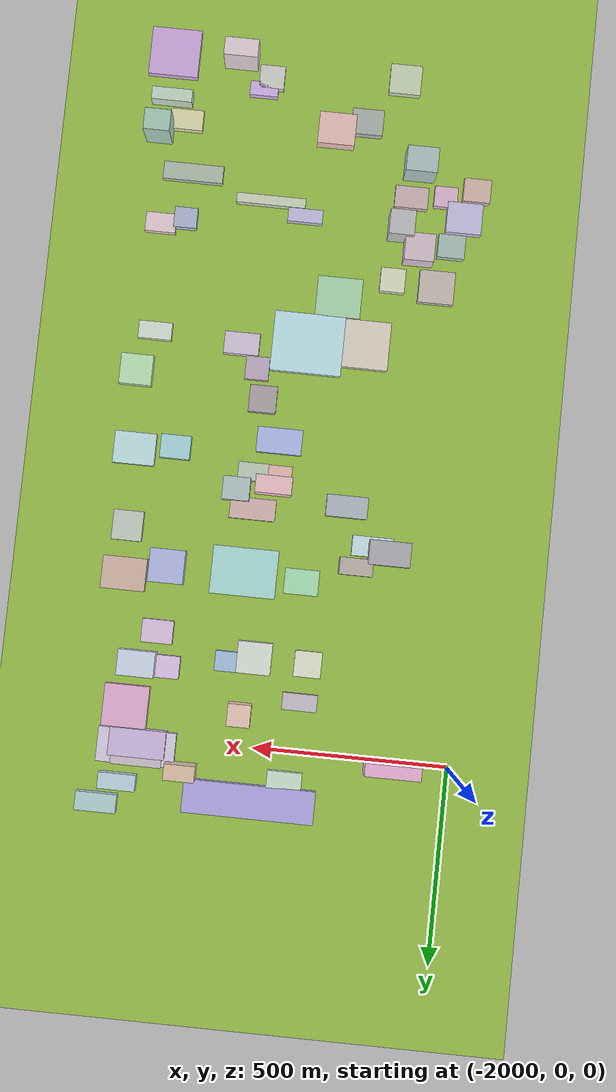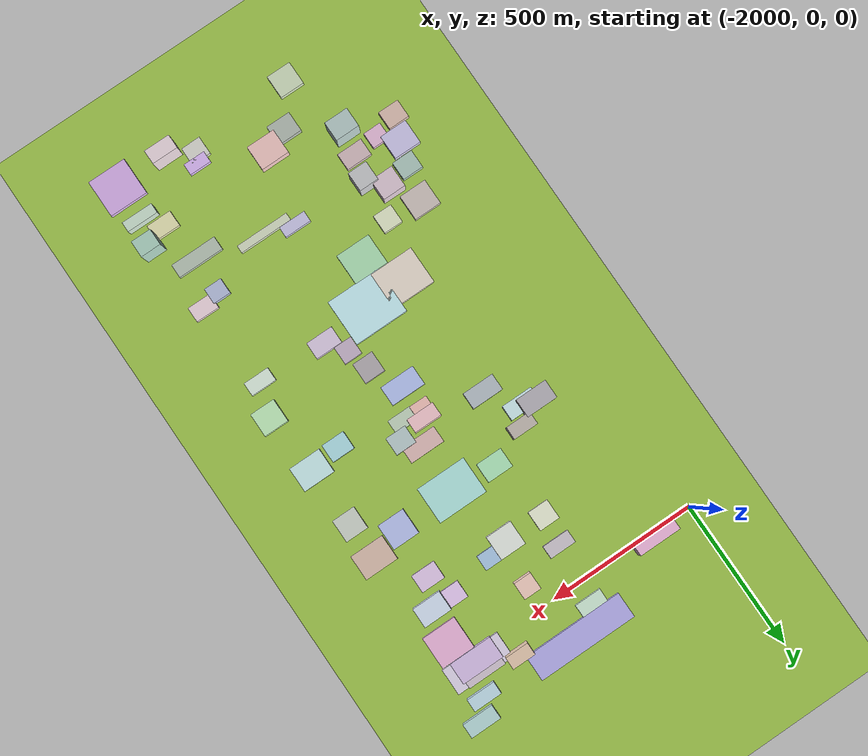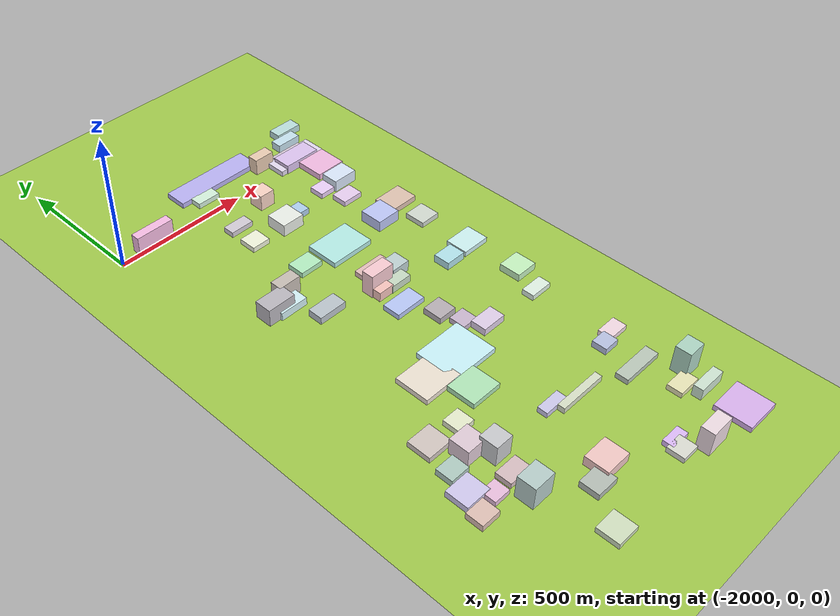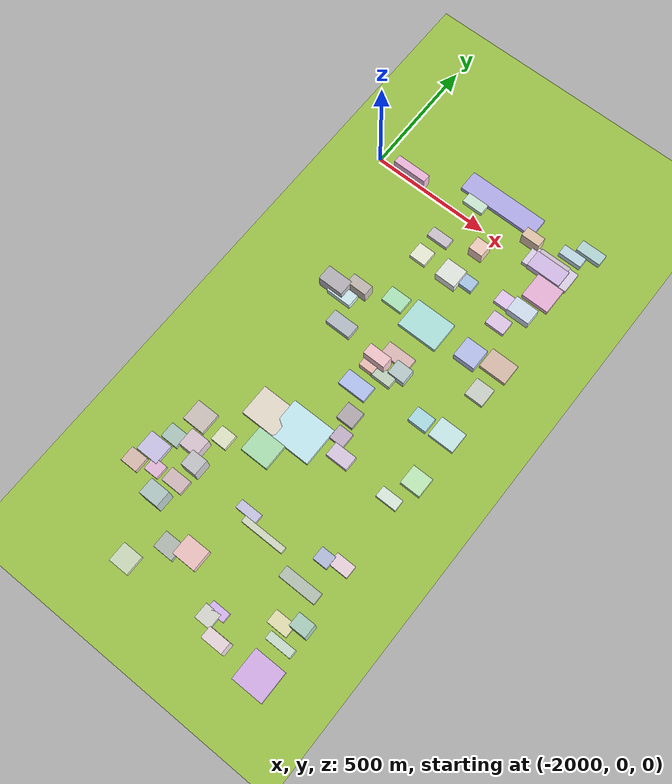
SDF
<sdf version="1.9">
 <world name="city_map">
  <model name="ground_plane">
   <static>1</static>
   <link name="link">
    <collision name="collision">
     <geometry><plane><normal>0 0 1</normal><size>11000 11000</size></plane></geometry>
    </collision>
    <visual name="visual">
     <geometry><plane><normal>0 0 1</normal><size>11000 11000</size></plane></geometry>
     <material>
      <ambient>0.551 0.712 0.210 1</ambient>
      <diffuse>0.651 0.812 0.310 1</diffuse>
      <specular>0.1 0.1 0.05 1</specular>
     </material>
    </visual>
   </link>
  </model>
  <model name="building_704288464">
   <static>1</static>
   <pose>-1536.8891504038045 -1054.3563596227127 10.0 0 0 0</pose>
   <link name="link">
    <collision name="collision">
     <geometry><box><size>185.0161457953972 156.85410000006783 20</size></box></geometry>
    </collision>
    <visual name="visual">
     <cast_shadows>false</cast_shadows>
     <geometry><box><size>185.0161457953972 156.85410000006783 20</size></box></geometry>
     <material>
      <ambient>0.709 0.870 0.898 1</ambient>
      <diffuse>0.809 0.970 0.998 1</diffuse>
      <specular>0.243 0.291 0.300 1</specular>
      <emissive>0.01 0.01 0.01 1</emissive>
     </material>
    </visual>
   </link>
  </model>
  <model name="building_964612802">
   <static>1</static>
   <pose>-1503.8218069606157 133.7510092297601 10.0 0 0 0</pose>
   <link name="link">
    <collision name="collision">
     <geometry><box><size>337.94349394099265 84.9927000002566 20</size></box></geometry>
    </collision>
    <visual name="visual">
     <cast_shadows>false</cast_shadows>
     <geometry><box><size>337.94349394099265 84.9927000002566 20</size></box></geometry>
     <material>
      <ambient>0.644 0.619 0.871 1</ambient>
      <diffuse>0.744 0.719 0.971 1</diffuse>
      <specular>0.223 0.216 0.291 1</specular>
      <emissive>0.01 0.01 0.01 1</emissive>
     </material>
    </visual>
   </link>
  </model>
  <model name="building_795796305">
   <static>1</static>
   <pose>-1433.1266343263812 -446.67509960497097 10.0 0 0 0</pose>
   <link name="link">
    <collision name="collision">
     <geometry><box><size>169.64012694968054 124.5752999998544 20</size></box></geometry>
    </collision>
    <visual name="visual">
     <cast_shadows>false</cast_shadows>
     <geometry><box><size>169.64012694968054 124.5752999998544 20</size></box></geometry>
     <material>
      <ambient>0.626 0.841 0.820 1</ambient>
      <diffuse>0.726 0.941 0.920 1</diffuse>
      <specular>0.218 0.282 0.276 1</specular>
      <emissive>0.01 0.01 0.01 1</emissive>
     </material>
    </visual>
   </link>
  </model>
  <model name="building_12157176">
   <static>1</static>
   <pose>-1675.0121889436398 -1066.0813592065185 10.0 0 0 0</pose>
   <link name="link">
    <collision name="collision">
     <geometry><box><size>148.0839857845683 126.57330000033085 20</size></box></geometry>
    </collision>
    <visual name="visual">
     <cast_shadows>false</cast_shadows>
     <geometry><box><size>148.0839857845683 126.57330000033085 20</size></box></geometry>
     <material>
      <ambient>0.848 0.803 0.746 1</ambient>
      <diffuse>0.948 0.903 0.846 1</diffuse>
      <specular>0.284 0.271 0.254 1</specular>
      <emissive>0.01 0.01 0.01 1</emissive>
     </material>
    </visual>
   </link>
  </model>
  <model name="building_988642200">
   <static>1</static>
   <pose>-1204.4342931998065 25.123955632968954 10.0 0 0 0</pose>
   <link name="link">
    <collision name="collision">
     <geometry><box><size>200.12497261075552 88.189499999757 20</size></box></geometry>
    </collision>
    <visual name="visual">
     <cast_shadows>false</cast_shadows>
     <geometry><box><size>200.12497261075552 88.189499999757 20</size></box></geometry>
     <material>
      <ambient>0.815 0.778 0.862 1</ambient>
      <diffuse>0.915 0.878 0.962 1</diffuse>
      <specular>0.274 0.264 0.289 1</specular>
      <emissive>0.01 0.01 0.01 1</emissive>
     </material>
    </visual>
   </link>
  </model>
  <model name="building_964401013">
   <static>1</static>
   <pose>-1111.0636028866522 -1792.0975195329652 10.0 0 0 0</pose>
   <link name="link">
    <collision name="collision">
     <geometry><box><size>130.25850000001782 126.69446936713892 20</size></box></geometry>
    </collision>
    <visual name="visual">
     <cast_shadows>false</cast_shadows>
     <geometry><box><size>130.25850000001782 126.69446936713892 20</size></box></geometry>
     <material>
      <ambient>0.774 0.619 0.854 1</ambient>
      <diffuse>0.874 0.719 0.954 1</diffuse>
      <specular>0.262 0.216 0.286 1</specular>
      <emissive>0.01 0.01 0.01 1</emissive>
     </material>
    </visual>
   </link>
  </model>
  <model name="building_627020353">
   <static>1</static>
   <pose>-1166.5510955998432 -76.06400152099383 12.0 0 0 0</pose>
   <link name="link">
    <collision name="collision">
     <geometry><box><size>115.206900000004 107.89986030619293 24.0</size></box></geometry>
    </collision>
    <visual name="visual">
     <cast_shadows>false</cast_shadows>
     <geometry><box><size>115.206900000004 107.89986030619293 24.0</size></box></geometry>
     <material>
      <ambient>0.863 0.646 0.800 1</ambient>
      <diffuse>0.963 0.746 0.900 1</diffuse>
      <specular>0.289 0.224 0.270 1</specular>
      <emissive>0.01 0.01 0.01 1</emissive>
     </material>
    </visual>
   </link>
  </model>
  <model name="building_559208449">
   <static>1</static>
   <pose>-1605.6546095802448 -1183.7813413798674 10.0 0 0 0</pose>
   <link name="link">
    <collision name="collision">
     <geometry><box><size>117.85536133811067 104.63970000034095 20</size></box></geometry>
    </collision>
    <visual name="visual">
     <cast_shadows>false</cast_shadows>
     <geometry><box><size>117.85536133811067 104.63970000034095 20</size></box></geometry>
     <material>
      <ambient>0.613 0.823 0.641 1</ambient>
      <diffuse>0.713 0.923 0.741 1</diffuse>
      <specular>0.214 0.277 0.222 1</specular>
      <emissive>0.01 0.01 0.01 1</emissive>
     </material>
    </visual>
   </link>
  </model>
  <model name="building_234184040">
   <static>1</static>
   <pose>-1207.05863094869 13.933959807911528 16.96881054272498 0 0 0</pose>
   <link name="link">
    <collision name="collision">
     <geometry><box><size>144.32256868699145 71.5506000001227 33.93762108544996</size></box></geometry>
    </collision>
    <visual name="visual">
     <cast_shadows>false</cast_shadows>
     <geometry><box><size>144.32256868699145 71.5506000001227 33.93762108544996</size></box></geometry>
     <material>
      <ambient>0.781 0.685 0.856 1</ambient>
      <diffuse>0.881 0.785 0.956 1</diffuse>
      <specular>0.264 0.235 0.287 1</specular>
      <emissive>0.01 0.01 0.01 1</emissive>
     </material>
    </visual>
   </link>
  </model>
  <model name="building_343190957">
   <static>1</static>
   <pose>-1125.4594556506854 -412.05349529354964 10.5 0 0 0</pose>
   <link name="link">
    <collision name="collision">
     <geometry><box><size>114.27450000014971 84.73173248765009 21.0</size></box></geometry>
    </collision>
    <visual name="visual">
     <cast_shadows>false</cast_shadows>
     <geometry><box><size>114.27450000014971 84.73173248765009 21.0</size></box></geometry>
     <material>
      <ambient>0.790 0.677 0.610 1</ambient>
      <diffuse>0.890 0.777 0.710 1</diffuse>
      <specular>0.267 0.233 0.213 1</specular>
      <emissive>0.01 0.01 0.01 1</emissive>
     </material>
    </visual>
   </link>
  </model>
  <model name="building_272565726">
   <static>1</static>
   <pose>-1117.8018921482724 -736.5846280449426 10.0 0 0 0</pose>
   <link name="link">
    <collision name="collision">
     <geometry><box><size>108.17766486004878 83.34989999998754 20</size></box></geometry>
    </collision>
    <visual name="visual">
     <cast_shadows>false</cast_shadows>
     <geometry><box><size>108.17766486004878 83.34989999998754 20</size></box></geometry>
     <material>
      <ambient>0.725 0.865 0.868 1</ambient>
      <diffuse>0.825 0.965 0.968 1</diffuse>
      <specular>0.248 0.289 0.290 1</specular>
      <emissive>0.01 0.01 0.01 1</emissive>
     </material>
    </visual>
   </link>
  </model>
  <model name="building_279113521">
   <static>1</static>
   <pose>-1556.7889625554112 -1624.3620785129626 18.0 0 0 0</pose>
   <link name="link">
    <collision name="collision">
     <geometry><box><size>97.15830000045855 83.9958814377421 36.0</size></box></geometry>
    </collision>
    <visual name="visual">
     <cast_shadows>false</cast_shadows>
     <geometry><box><size>97.15830000045855 83.9958814377421 36.0</size></box></geometry>
     <material>
      <ambient>0.873 0.705 0.692 1</ambient>
      <diffuse>0.973 0.805 0.792 1</diffuse>
      <specular>0.292 0.242 0.238 1</specular>
      <emissive>0.01 0.01 0.01 1</emissive>
     </material>
    </visual>
   </link>
  </model>
  <model name="building_853301683">
   <static>1</static>
   <pose>-1856.3577469010859 -1235.2428188589802 10.5 0 0 0</pose>
   <link name="link">
    <collision name="collision">
     <geometry><box><size>92.49630000039843 86.04975053860672 21.0</size></box></geometry>
    </collision>
    <visual name="visual">
     <cast_shadows>false</cast_shadows>
     <geometry><box><size>92.49630000039843 86.04975053860672 21.0</size></box></geometry>
     <material>
      <ambient>0.744 0.698 0.673 1</ambient>
      <diffuse>0.844 0.798 0.773 1</diffuse>
      <specular>0.253 0.239 0.232 1</specular>
      <emissive>0.01 0.01 0.01 1</emissive>
     </material>
    </visual>
   </link>
  </model>
  <model name="building_830202476">
   <static>1</static>
   <pose>-1234.68201159145 -441.47955820299177 20.74159668848543 0 0 0</pose>
   <link name="link">
    <collision name="collision">
     <geometry><box><size>91.04788777447877 86.94629999942549 41.48319337697086</size></box></geometry>
    </collision>
    <visual name="visual">
     <cast_shadows>false</cast_shadows>
     <geometry><box><size>91.04788777447877 86.94629999942549 41.48319337697086</size></box></geometry>
     <material>
      <ambient>0.658 0.699 0.885 1</ambient>
      <diffuse>0.758 0.799 0.985 1</diffuse>
      <specular>0.227 0.240 0.295 1</specular>
      <emissive>0.01 0.01 0.01 1</emissive>
     </material>
    </visual>
   </link>
  </model>
  <model name="building_685108843">
   <static>1</static>
   <pose>-1489.4493933696572 -793.106874618543 10.0 0 0 0</pose>
   <link name="link">
    <collision name="collision">
     <geometry><box><size>117.63780000001844 66.23536152196681 20</size></box></geometry>
    </collision>
    <visual name="visual">
     <cast_shadows>false</cast_shadows>
     <geometry><box><size>117.63780000001844 66.23536152196681 20</size></box></geometry>
     <material>
      <ambient>0.641 0.702 0.891 1</ambient>
      <diffuse>0.741 0.802 0.991 1</diffuse>
      <specular>0.222 0.241 0.297 1</specular>
      <emissive>0.01 0.01 0.01 1</emissive>
     </material>
    </visual>
   </link>
  </model>
  <model name="building_313618752">
   <static>1</static>
   <pose>-1911.7030443022613 -1424.243639308813 12.0 0 0 0</pose>
   <link name="link">
    <collision name="collision">
     <geometry><box><size>92.57399999972904 81.99939121173756 24.0</size></box></geometry>
    </collision>
    <visual name="visual">
     <cast_shadows>false</cast_shadows>
     <geometry><box><size>92.57399999972904 81.99939121173756 24.0</size></box></geometry>
     <material>
      <ambient>0.738 0.710 0.859 1</ambient>
      <diffuse>0.838 0.810 0.959 1</diffuse>
      <specular>0.252 0.243 0.288 1</specular>
      <emissive>0.01 0.01 0.01 1</emissive>
     </material>
    </visual>
   </link>
  </model>
  <model name="building_777116061">
   <static>1</static>
   <pose>-1207.6984999869042 44.180776943441586 11.13446915468485 0 0 0</pose>
   <link name="link">
    <collision name="collision">
     <geometry><box><size>131.05002615615118 56.35469999999998 22.2689383093697</size></box></geometry>
    </collision>
    <visual name="visual">
     <cast_shadows>false</cast_shadows>
     <geometry><box><size>131.05002615615118 56.35469999999998 22.2689383093697</size></box></geometry>
     <material>
      <ambient>0.759 0.705 0.760 1</ambient>
      <diffuse>0.859 0.805 0.860 1</diffuse>
      <specular>0.258 0.241 0.258 1</specular>
      <emissive>0.01 0.01 0.01 1</emissive>
     </material>
    </visual>
   </link>
  </model>
  <model name="building_497699792">
   <static>1</static>
   <pose>-1192.598385174603 -1475.1705830790788 10.0 0 0 0</pose>
   <link name="link">
    <collision name="collision">
     <geometry><box><size>156.6563542241564 45.69869999929921 20</size></box></geometry>
    </collision>
    <visual name="visual">
     <cast_shadows>false</cast_shadows>
     <geometry><box><size>156.6563542241564 45.69869999929921 20</size></box></geometry>
     <material>
      <ambient>0.648 0.700 0.644 1</ambient>
      <diffuse>0.748 0.800 0.744 1</diffuse>
      <specular>0.224 0.240 0.223 1</specular>
      <emissive>0.01 0.01 0.01 1</emissive>
     </material>
    </visual>
   </link>
  </model>
  <model name="building_4354269">
   <static>1</static>
   <pose>-1482.1839981995258 -231.36584990679438 22.8798165831724 0 0 0</pose>
   <link name="link">
    <collision name="collision">
     <geometry><box><size>87.88271948888539 81.30750000056963 45.7596331663448</size></box></geometry>
    </collision>
    <visual name="visual">
     <cast_shadows>false</cast_shadows>
     <geometry><box><size>87.88271948888539 81.30750000056963 45.7596331663448</size></box></geometry>
     <material>
      <ambient>0.840 0.858 0.830 1</ambient>
      <diffuse>0.940 0.958 0.930 1</diffuse>
      <specular>0.282 0.287 0.279 1</specular>
      <emissive>0.01 0.01 0.01 1</emissive>
     </material>
    </visual>
   </link>
  </model>
  <model name="building_94855245">
   <static>1</static>
   <pose>-1798.8968727163501 -530.3257605463024 33.0 0 0 0</pose>
   <link name="link">
    <collision name="collision">
     <geometry><box><size>106.80420000039703 63.1920843428778 66.0</size></box></geometry>
    </collision>
    <visual name="visual">
     <cast_shadows>false</cast_shadows>
     <geometry><box><size>106.80420000039703 63.1920843428778 66.0</size></box></geometry>
     <material>
      <ambient>0.648 0.634 0.663 1</ambient>
      <diffuse>0.748 0.734 0.763 1</diffuse>
      <specular>0.224 0.220 0.229 1</specular>
      <emissive>0.01 0.01 0.01 1</emissive>
     </material>
    </visual>
   </link>
  </model>
  <model name="building_949914203">
   <static>1</static>
   <pose>-1100.6129336431725 -940.9302337679286 13.5 0 0 0</pose>
   <link name="link">
    <collision name="collision">
     <geometry><box><size>84.12690000039191 79.61990972246878 27.0</size></box></geometry>
    </collision>
    <visual name="visual">
     <cast_shadows>false</cast_shadows>
     <geometry><box><size>84.12690000039191 79.61990972246878 27.0</size></box></geometry>
     <material>
      <ambient>0.691 0.871 0.670 1</ambient>
      <diffuse>0.791 0.971 0.770 1</diffuse>
      <specular>0.237 0.291 0.231 1</specular>
      <emissive>0.01 0.01 0.01 1</emissive>
     </material>
    </visual>
   </link>
  </model>
  <model name="building_774512603">
   <static>1</static>
   <pose>-1438.383940142968 -610.5736587677343 10.0 0 0 0</pose>
   <link name="link">
    <collision name="collision">
     <geometry><box><size>118.63168018111392 55.58880000051403 20</size></box></geometry>
    </collision>
    <visual name="visual">
     <cast_shadows>false</cast_shadows>
     <geometry><box><size>118.63168018111392 55.58880000051403 20</size></box></geometry>
     <material>
      <ambient>0.813 0.670 0.657 1</ambient>
      <diffuse>0.913 0.770 0.757 1</diffuse>
      <specular>0.274 0.231 0.227 1</specular>
      <emissive>0.01 0.01 0.01 1</emissive>
     </material>
    </visual>
   </link>
  </model>
  <model name="building_518492051">
   <static>1</static>
   <pose>-1723.7566891415763 -1779.7170096351892 10.0 0 0 0</pose>
   <link name="link">
    <collision name="collision">
     <geometry><box><size>82.96488398942626 78.80999999977689 20</size></box></geometry>
    </collision>
    <visual name="visual">
     <cast_shadows>false</cast_shadows>
     <geometry><box><size>82.96488398942626 78.80999999977689 20</size></box></geometry>
     <material>
      <ambient>0.743 0.802 0.675 1</ambient>
      <diffuse>0.843 0.902 0.775 1</diffuse>
      <specular>0.253 0.271 0.232 1</specular>
      <emissive>0.01 0.01 0.01 1</emissive>
     </material>
    </visual>
   </link>
  </model>
  <model name="building_400930262">
   <static>1</static>
   <pose>-1183.2592411211701 -187.27597805387614 22.305746965476317 0 0 0</pose>
   <link name="link">
    <collision name="collision">
     <geometry><box><size>95.90626055835052 66.3225000005454 44.61149393095263</size></box></geometry>
    </collision>
    <visual name="visual">
     <cast_shadows>false</cast_shadows>
     <geometry><box><size>95.90626055835052 66.3225000005454 44.61149393095263</size></box></geometry>
     <material>
      <ambient>0.770 0.824 0.898 1</ambient>
      <diffuse>0.870 0.924 0.998 1</diffuse>
      <specular>0.261 0.277 0.299 1</specular>
      <emissive>0.01 0.01 0.01 1</emissive>
     </material>
    </visual>
   </link>
  </model>
  <model name="building_994794193">
   <static>1</static>
   <pose>-1680.382235540659 -640.5742044106729 13.5 0 0 0</pose>
   <link name="link">
    <collision name="collision">
     <geometry><box><size>107.3591999997845 56.553401334968434 27.0</size></box></geometry>
    </collision>
    <visual name="visual">
     <cast_shadows>false</cast_shadows>
     <geometry><box><size>107.3591999997845 56.553401334968434 27.0</size></box></geometry>
     <material>
      <ambient>0.649 0.686 0.717 1</ambient>
      <diffuse>0.749 0.786 0.817 1</diffuse>
      <specular>0.225 0.236 0.245 1</specular>
      <emissive>0.01 0.01 0.01 1</emissive>
     </material>
    </visual>
   </link>
  </model>
  <model name="building_990171337">
   <static>1</static>
   <pose>-1121.6393221571648 -535.7487393759667 10.0 0 0 0</pose>
   <link name="link">
    <collision name="collision">
     <geometry><box><size>78.01260430672669 77.18939999976726 20</size></box></geometry>
    </collision>
    <visual name="visual">
     <cast_shadows>false</cast_shadows>
     <geometry><box><size>78.01260430672669 77.18939999976726 20</size></box></geometry>
     <material>
      <ambient>0.742 0.770 0.733 1</ambient>
      <diffuse>0.842 0.870 0.833 1</diffuse>
      <specular>0.253 0.261 0.250 1</specular>
      <emissive>0.01 0.01 0.01 1</emissive>
     </material>
    </visual>
   </link>
  </model>
  <model name="building_776333312">
   <static>1</static>
   <pose>-1582.913117285372 -435.7306634495162 10.07005034778464 0 0 0</pose>
   <link name="link">
    <collision name="collision">
     <geometry><box><size>88.94032328055603 66.04500000045732 20.14010069556928</size></box></geometry>
    </collision>
    <visual name="visual">
     <cast_shadows>false</cast_shadows>
     <geometry><box><size>88.94032328055603 66.04500000045732 20.14010069556928</size></box></geometry>
     <material>
      <ambient>0.620 0.853 0.672 1</ambient>
      <diffuse>0.720 0.953 0.772 1</diffuse>
      <specular>0.216 0.286 0.232 1</specular>
      <emissive>0.01 0.01 0.01 1</emissive>
     </material>
    </visual>
   </link>
  </model>
  <model name="building_651350229">
   <static>1</static>
   <pose>-1634.8203595414154 -1654.4461479355793 12.0 0 0 0</pose>
   <link name="link">
    <collision name="collision">
     <geometry><box><size>82.7393999999515 68.24013003339671 24.0</size></box></geometry>
    </collision>
    <visual name="visual">
     <cast_shadows>false</cast_shadows>
     <geometry><box><size>82.7393999999515 68.24013003339671 24.0</size></box></geometry>
     <material>
      <ambient>0.629 0.662 0.629 1</ambient>
      <diffuse>0.729 0.762 0.729 1</diffuse>
      <specular>0.219 0.229 0.219 1</specular>
      <emissive>0.01 0.01 0.01 1</emissive>
     </material>
    </visual>
   </link>
  </model>
  <model name="building_846394028">
   <static>1</static>
   <pose>-1800.105596374429 -1326.2136967798397 30.88834127137469 0 0 0</pose>
   <link name="link">
    <collision name="collision">
     <geometry><box><size>77.56591311688163 72.43860000024682 61.77668254274938</size></box></geometry>
    </collision>
    <visual name="visual">
     <cast_shadows>false</cast_shadows>
     <geometry><box><size>77.56591311688163 72.43860000024682 61.77668254274938</size></box></geometry>
     <material>
      <ambient>0.795 0.714 0.762 1</ambient>
      <diffuse>0.895 0.814 0.862 1</diffuse>
      <specular>0.268 0.244 0.259 1</specular>
      <emissive>0.01 0.01 0.01 1</emissive>
     </material>
    </visual>
   </link>
  </model>
  <model name="building_375875070">
   <static>1</static>
   <pose>-1755.1410675997772 -543.6287418802234 15.0 0 0 0</pose>
   <link name="link">
    <collision name="collision">
     <geometry><box><size>105.3279000004963 52.37067958740281 30.0</size></box></geometry>
    </collision>
    <visual name="visual">
     <cast_shadows>false</cast_shadows>
     <geometry><box><size>105.3279000004963 52.37067958740281 30.0</size></box></geometry>
     <material>
      <ambient>0.746 0.862 0.879 1</ambient>
      <diffuse>0.846 0.962 0.979 1</diffuse>
      <specular>0.254 0.289 0.294 1</specular>
      <emissive>0.01 0.01 0.01 1</emissive>
     </material>
    </visual>
   </link>
  </model>
  <model name="building_123816473">
   <static>1</static>
   <pose>-1783.600993913087 -1548.8306823556509 42.83142493886356 0 0 0</pose>
   <link name="link">
    <collision name="collision">
     <geometry><box><size>81.33929690199912 65.48999999949245 85.66284987772713</size></box></geometry>
    </collision>
    <visual name="visual">
     <cast_shadows>false</cast_shadows>
     <geometry><box><size>81.33929690199912 65.48999999949245 85.66284987772713</size></box></geometry>
     <material>
      <ambient>0.636 0.723 0.712 1</ambient>
      <diffuse>0.736 0.823 0.812 1</diffuse>
      <specular>0.221 0.247 0.244 1</specular>
      <emissive>0.01 0.01 0.01 1</emissive>
     </material>
    </visual>
   </link>
  </model>
  <model name="building_796682023">
   <static>1</static>
   <pose>-1366.1714217560148 -1035.8808171293088 13.5 0 0 0</pose>
   <link name="link">
    <collision name="collision">
     <geometry><box><size>91.66687231128564 57.398099999574015 27.0</size></box></geometry>
    </collision>
    <visual name="visual">
     <cast_shadows>false</cast_shadows>
     <geometry><box><size>91.66687231128564 57.398099999574015 27.0</size></box></geometry>
     <material>
      <ambient>0.797 0.731 0.834 1</ambient>
      <diffuse>0.897 0.831 0.934 1</diffuse>
      <specular>0.269 0.249 0.280 1</specular>
      <emissive>0.01 0.01 0.01 1</emissive>
     </material>
    </visual>
   </link>
  </model>
  <model name="building_444221978">
   <static>1</static>
   <pose>-1117.350358582794 172.37340837263494 13.5 0 0 0</pose>
   <link name="link">
    <collision name="collision">
     <geometry><box><size>105.30570000023687 47.73026168687169 27.0</size></box></geometry>
    </collision>
    <visual name="visual">
     <cast_shadows>false</cast_shadows>
     <geometry><box><size>105.30570000023687 47.73026168687169 27.0</size></box></geometry>
     <material>
      <ambient>0.648 0.791 0.788 1</ambient>
      <diffuse>0.748 0.891 0.888 1</diffuse>
      <specular>0.224 0.267 0.266 1</specular>
      <emissive>0.01 0.01 0.01 1</emissive>
     </material>
    </visual>
   </link>
  </model>
  <model name="building_838509498">
   <static>1</static>
   <pose>-1768.947372429863 -1466.2859848891364 10.5 0 0 0</pose>
   <link name="link">
    <collision name="collision">
     <geometry><box><size>87.06840000006366 57.4547855818921 21.0</size></box></geometry>
    </collision>
    <visual name="visual">
     <cast_shadows>false</cast_shadows>
     <geometry><box><size>87.06840000006366 57.4547855818921 21.0</size></box></geometry>
     <material>
      <ambient>0.764 0.662 0.678 1</ambient>
      <diffuse>0.864 0.762 0.778 1</diffuse>
      <specular>0.259 0.228 0.234 1</specular>
      <emissive>0.01 0.01 0.01 1</emissive>
     </material>
    </visual>
   </link>
  </model>
  <model name="building_723825931">
   <static>1</static>
   <pose>-1435.5418225922817 -897.1811712910962 12.0 0 0 0</pose>
   <link name="link">
    <collision name="collision">
     <geometry><box><size>71.05109999980641 70.23596079517908 24.0</size></box></geometry>
    </collision>
    <visual name="visual">
     <cast_shadows>false</cast_shadows>
     <geometry><box><size>71.05109999980641 70.23596079517908 24.0</size></box></geometry>
     <material>
      <ambient>0.635 0.604 0.626 1</ambient>
      <diffuse>0.735 0.704 0.726 1</diffuse>
      <specular>0.220 0.211 0.218 1</specular>
      <emissive>0.01 0.01 0.01 1</emissive>
     </material>
    </visual>
   </link>
  </model>
  <model name="building_253488695">
   <static>1</static>
   <pose>-1227.0984437325526 -272.7572874089798 10.0 0 0 0</pose>
   <link name="link">
    <collision name="collision">
     <geometry><box><size>81.20759999940219 60.46683992570462 20</size></box></geometry>
    </collision>
    <visual name="visual">
     <cast_shadows>false</cast_shadows>
     <geometry><box><size>81.20759999940219 60.46683992570462 20</size></box></geometry>
     <material>
      <ambient>0.828 0.729 0.862 1</ambient>
      <diffuse>0.928 0.829 0.962 1</diffuse>
      <specular>0.278 0.249 0.289 1</specular>
      <emissive>0.01 0.01 0.01 1</emissive>
     </material>
    </visual>
   </link>
  </model>
  <model name="building_468642795">
   <static>1</static>
   <pose>-1859.5285611430052 15.43385581848635 35.25 0 0 0</pose>
   <link name="link">
    <collision name="collision">
     <geometry><box><size>143.80943665661212 33.49980000028552 70.5</size></box></geometry>
    </collision>
    <visual name="visual">
     <cast_shadows>false</cast_shadows>
     <geometry><box><size>143.80943665661212 33.49980000028552 70.5</size></box></geometry>
     <material>
      <ambient>0.884 0.657 0.810 1</ambient>
      <diffuse>0.984 0.757 0.910 1</diffuse>
      <specular>0.295 0.227 0.273 1</specular>
      <emissive>0.01 0.01 0.01 1</emissive>
     </material>
    </visual>
   </link>
  </model>
  <model name="building_515790309">
   <static>1</static>
   <pose>-1223.510981680164 -750.1105506194178 14.281661979987486 0 0 0</pose>
   <link name="link">
    <collision name="collision">
     <geometry><box><size>77.82210000006273 61.2022264188467 28.563323959974973</size></box></geometry>
    </collision>
    <visual name="visual">
     <cast_shadows>false</cast_shadows>
     <geometry><box><size>77.82210000006273 61.2022264188467 28.563323959974973</size></box></geometry>
     <material>
      <ambient>0.618 0.812 0.843 1</ambient>
      <diffuse>0.718 0.912 0.943 1</diffuse>
      <specular>0.215 0.274 0.283 1</specular>
      <emissive>0.01 0.01 0.01 1</emissive>
     </material>
    </visual>
   </link>
  </model>
  <model name="building_890598553">
   <static>1</static>
   <pose>-1620.1183219594573 -227.8838092898958 10.0 0 0 0</pose>
   <link name="link">
    <collision name="collision">
     <geometry><box><size>70.11869999995213 66.73452166601989 20</size></box></geometry>
    </collision>
    <visual name="visual">
     <cast_shadows>false</cast_shadows>
     <geometry><box><size>70.11869999995213 66.73452166601989 20</size></box></geometry>
     <material>
      <ambient>0.860 0.877 0.782 1</ambient>
      <diffuse>0.960 0.977 0.882 1</diffuse>
      <specular>0.288 0.293 0.265 1</specular>
      <emissive>0.01 0.01 0.01 1</emissive>
     </material>
    </visual>
   </link>
  </model>
  <model name="building_240686384">
   <static>1</static>
   <pose>-1403.5158941804536 -1420.8954745337646 10.98990083124776 0 0 0</pose>
   <link name="link">
    <collision name="collision">
     <geometry><box><size>181.29435269685038 25.319100000118056 21.97980166249552</size></box></geometry>
    </collision>
    <visual name="visual">
     <cast_shadows>false</cast_shadows>
     <geometry><box><size>181.29435269685038 25.319100000118056 21.97980166249552</size></box></geometry>
     <material>
      <ambient>0.767 0.800 0.701 1</ambient>
      <diffuse>0.867 0.900 0.801 1</diffuse>
      <specular>0.260 0.270 0.240 1</specular>
      <emissive>0.01 0.01 0.01 1</emissive>
     </material>
    </visual>
   </link>
  </model>
  <model name="building_615262209">
   <static>1</static>
   <pose>-1161.1629429420093 -1614.4386860960742 10.0 0 0 0</pose>
   <link name="link">
    <collision name="collision">
     <geometry><box><size>84.74849999976897 53.801299001576844 20</size></box></geometry>
    </collision>
    <visual name="visual">
     <cast_shadows>false</cast_shadows>
     <geometry><box><size>84.74849999976897 53.801299001576844 20</size></box></geometry>
     <material>
      <ambient>0.832 0.821 0.635 1</ambient>
      <diffuse>0.932 0.921 0.735 1</diffuse>
      <specular>0.280 0.276 0.221 1</specular>
      <emissive>0.01 0.01 0.01 1</emissive>
     </material>
    </visual>
   </link>
  </model>
  <model name="building_476755346">
   <static>1</static>
   <pose>-1938.3020555315952 -1500.4950822684627 12.0 0 0 0</pose>
   <link name="link">
    <collision name="collision">
     <geometry><box><size>70.9541351010873 61.62720000009614 24.0</size></box></geometry>
    </collision>
    <visual name="visual">
     <cast_shadows>false</cast_shadows>
     <geometry><box><size>70.9541351010873 61.62720000009614 24.0</size></box></geometry>
     <material>
      <ambient>0.794 0.672 0.629 1</ambient>
      <diffuse>0.894 0.772 0.729 1</diffuse>
      <specular>0.268 0.231 0.219 1</specular>
      <emissive>0.01 0.01 0.01 1</emissive>
     </material>
    </visual>
   </link>
  </model>
  <model name="building_400296653">
   <static>1</static>
   <pose>-1884.9618130757278 -1345.9801166052382 12.0 0 0 0</pose>
   <link name="link">
    <collision name="collision">
     <geometry><box><size>70.85745110344939 61.61609999996642 24.0</size></box></geometry>
    </collision>
    <visual name="visual">
     <cast_shadows>false</cast_shadows>
     <geometry><box><size>70.85745110344939 61.61609999996642 24.0</size></box></geometry>
     <material>
      <ambient>0.610 0.717 0.679 1</ambient>
      <diffuse>0.710 0.817 0.779 1</diffuse>
      <specular>0.213 0.245 0.234 1</specular>
      <emissive>0.01 0.01 0.01 1</emissive>
     </material>
    </visual>
   </link>
  </model>
  <model name="building_643724401">
   <static>1</static>
   <pose>-1487.3294217019325 -673.8730254432924 43.68901571837337 0 0 0</pose>
   <link name="link">
    <collision name="collision">
     <geometry><box><size>93.53117624659593 45.920699999527415 87.37803143674674</size></box></geometry>
    </collision>
    <visual name="visual">
     <cast_shadows>false</cast_shadows>
     <geometry><box><size>93.53117624659593 45.920699999527415 87.37803143674674</size></box></geometry>
     <material>
      <ambient>0.896 0.717 0.743 1</ambient>
      <diffuse>0.996 0.817 0.843 1</diffuse>
      <specular>0.299 0.245 0.253 1</specular>
      <emissive>0.01 0.01 0.01 1</emissive>
     </material>
    </visual>
   </link>
  </model>
  <model name="building_501730052">
   <static>1</static>
   <pose>-1748.4422165375981 -1382.5576877261624 38.289988876036695 0 0 0</pose>
   <link name="link">
    <collision name="collision">
     <geometry><box><size>65.62319999947164 65.43265426862457 76.57997775207339</size></box></geometry>
    </collision>
    <visual name="visual">
     <cast_shadows>false</cast_shadows>
     <geometry><box><size>65.62319999947164 65.43265426862457 76.57997775207339</size></box></geometry>
     <material>
      <ambient>0.705 0.709 0.724 1</ambient>
      <diffuse>0.805 0.809 0.824 1</diffuse>
      <specular>0.241 0.243 0.247 1</specular>
      <emissive>0.01 0.01 0.01 1</emissive>
     </material>
    </visual>
   </link>
  </model>
  <model name="building_298093000">
   <static>1</static>
   <pose>-1391.3872628721394 -657.9851369141928 21.281163896651115 0 0 0</pose>
   <link name="link">
    <collision name="collision">
     <geometry><box><size>70.43532305042427 60.361799999505195 42.56232779330223</size></box></geometry>
    </collision>
    <visual name="visual">
     <cast_shadows>false</cast_shadows>
     <geometry><box><size>70.43532305042427 60.361799999505195 42.56232779330223</size></box></geometry>
     <material>
      <ambient>0.666 0.737 0.744 1</ambient>
      <diffuse>0.766 0.837 0.844 1</diffuse>
      <specular>0.230 0.251 0.253 1</specular>
      <emissive>0.01 0.01 0.01 1</emissive>
     </material>
    </visual>
   </link>
  </model>
  <model name="building_956927591">
   <static>1</static>
   <pose>-1289.0208879762777 -1793.354342961853 45.040827235510854 0 0 0</pose>
   <link name="link">
    <collision name="collision">
     <geometry><box><size>88.3702956753931 46.908600000030276 90.08165447102171</size></box></geometry>
    </collision>
    <visual name="visual">
     <cast_shadows>false</cast_shadows>
     <geometry><box><size>88.3702956753931 46.908600000030276 90.08165447102171</size></box></geometry>
     <material>
      <ambient>0.854 0.782 0.812 1</ambient>
      <diffuse>0.954 0.882 0.912 1</diffuse>
      <specular>0.286 0.265 0.274 1</specular>
      <emissive>0.01 0.01 0.01 1</emissive>
     </material>
    </visual>
   </link>
  </model>
  <model name="building_455499246">
   <static>1</static>
   <pose>-1740.794788897667 -1242.45801054879 10.5 0 0 0</pose>
   <link name="link">
    <collision name="collision">
     <geometry><box><size>64.91066272742748 63.1257000002563 21.0</size></box></geometry>
    </collision>
    <visual name="visual">
     <cast_shadows>false</cast_shadows>
     <geometry><box><size>64.91066272742748 63.1257000002563 21.0</size></box></geometry>
     <material>
      <ambient>0.824 0.846 0.724 1</ambient>
      <diffuse>0.924 0.946 0.824 1</diffuse>
      <specular>0.277 0.284 0.247 1</specular>
      <emissive>0.01 0.01 0.01 1</emissive>
     </material>
    </visual>
   </link>
  </model>
  <model name="building_751929096">
   <static>1</static>
   <pose>-1165.1980425651498 115.6905375283764 15.0 0 0 0</pose>
   <link name="link">
    <collision name="collision">
     <geometry><box><size>96.60330000028239 41.73306288762984 30.0</size></box></geometry>
    </collision>
    <visual name="visual">
     <cast_shadows>false</cast_shadows>
     <geometry><box><size>96.60330000028239 41.73306288762984 30.0</size></box></geometry>
     <material>
      <ambient>0.692 0.804 0.857 1</ambient>
      <diffuse>0.792 0.904 0.957 1</diffuse>
      <specular>0.238 0.271 0.287 1</specular>
      <emissive>0.01 0.01 0.01 1</emissive>
     </material>
    </visual>
   </link>
  </model>
  <model name="building_395126735">
   <static>1</static>
   <pose>-1372.571852453235 -1750.9380606529294 10.0 0 0 0</pose>
   <link name="link">
    <collision name="collision">
     <geometry><box><size>65.65650000064949 61.05958856689476 20</size></box></geometry>
    </collision>
    <visual name="visual">
     <cast_shadows>false</cast_shadows>
     <geometry><box><size>65.65650000064949 61.05958856689476 20</size></box></geometry>
     <material>
      <ambient>0.783 0.785 0.751 1</ambient>
      <diffuse>0.883 0.885 0.851 1</diffuse>
      <specular>0.265 0.265 0.255 1</specular>
      <emissive>0.01 0.01 0.01 1</emissive>
     </material>
    </visual>
   </link>
  </model>
  <model name="building_626234155">
   <static>1</static>
   <pose>-1121.7539219328914 -1334.1695474714186 10.0 0 0 0</pose>
   <link name="link">
    <collision name="collision">
     <geometry><box><size>79.66470000030057 50.176950223738324 20</size></box></geometry>
    </collision>
    <visual name="visual">
     <cast_shadows>false</cast_shadows>
     <geometry><box><size>79.66470000030057 50.176950223738324 20</size></box></geometry>
     <material>
      <ambient>0.870 0.773 0.809 1</ambient>
      <diffuse>0.970 0.873 0.909 1</diffuse>
      <specular>0.291 0.262 0.273 1</specular>
      <emissive>0.01 0.01 0.01 1</emissive>
     </material>
    </visual>
   </link>
  </model>
  <model name="building_636558068">
   <static>1</static>
   <pose>-1589.0604652054355 71.00037794317498 10.0 0 0 0</pose>
   <link name="link">
    <collision name="collision">
     <geometry><box><size>89.35499999996921 44.232581763587916 20</size></box></geometry>
    </collision>
    <visual name="visual">
     <cast_shadows>false</cast_shadows>
     <geometry><box><size>89.35499999996921 44.232581763587916 20</size></box></geometry>
     <material>
      <ambient>0.752 0.864 0.782 1</ambient>
      <diffuse>0.852 0.964 0.882 1</diffuse>
      <specular>0.256 0.289 0.265 1</specular>
      <emissive>0.01 0.01 0.01 1</emissive>
     </material>
    </visual>
   </link>
  </model>
  <model name="building_938667849">
   <static>1</static>
   <pose>-1138.131355374865 -1048.5757663322427 10.5 0 0 0</pose>
   <link name="link">
    <collision name="collision">
     <geometry><box><size>86.88423284967139 45.44339999947056 21.0</size></box></geometry>
    </collision>
    <visual name="visual">
     <cast_shadows>false</cast_shadows>
     <geometry><box><size>86.88423284967139 45.44339999947056 21.0</size></box></geometry>
     <material>
      <ambient>0.800 0.867 0.813 1</ambient>
      <diffuse>0.900 0.967 0.913 1</diffuse>
      <specular>0.270 0.290 0.274 1</specular>
      <emissive>0.01 0.01 0.01 1</emissive>
     </material>
    </visual>
   </link>
  </model>
  <model name="building_269782983">
   <static>1</static>
   <pose>-1608.9470287412184 -129.56293859121823 10.0 0 0 0</pose>
   <link name="link">
    <collision name="collision">
     <geometry><box><size>90.0153463056465 43.60080000002142 20</size></box></geometry>
    </collision>
    <visual name="visual">
     <cast_shadows>false</cast_shadows>
     <geometry><box><size>90.0153463056465 43.60080000002142 20</size></box></geometry>
     <material>
      <ambient>0.746 0.715 0.756 1</ambient>
      <diffuse>0.846 0.815 0.856 1</diffuse>
      <specular>0.254 0.244 0.257 1</specular>
      <emissive>0.01 0.01 0.01 1</emissive>
     </material>
    </visual>
   </link>
  </model>
  <model name="building_281017345">
   <static>1</static>
   <pose>-1431.9982094760821 -705.629526312326 14.33247106547328 0 0 0</pose>
   <link name="link">
    <collision name="collision">
     <geometry><box><size>82.23989999963521 47.225275260668816 28.66494213094656</size></box></geometry>
    </collision>
    <visual name="visual">
     <cast_shadows>false</cast_shadows>
     <geometry><box><size>82.23989999963521 47.225275260668816 28.66494213094656</size></box></geometry>
     <material>
      <ambient>0.701 0.775 0.687 1</ambient>
      <diffuse>0.801 0.875 0.787 1</diffuse>
      <specular>0.240 0.262 0.236 1</specular>
      <emissive>0.01 0.01 0.01 1</emissive>
     </material>
    </visual>
   </link>
  </model>
  <model name="building_105132794">
   <static>1</static>
   <pose>-1093.7531229229928 -1578.1534555154933 49.589839065869626 0 0 0</pose>
   <link name="link">
    <collision name="collision">
     <geometry><box><size>68.27609999971429 55.45629830056763 99.17967813173925</size></box></geometry>
    </collision>
    <visual name="visual">
     <cast_shadows>false</cast_shadows>
     <geometry><box><size>68.27609999971429 55.45629830056763 99.17967813173925</size></box></geometry>
     <material>
      <ambient>0.600 0.753 0.684 1</ambient>
      <diffuse>0.700 0.853 0.784 1</diffuse>
      <specular>0.210 0.256 0.235 1</specular>
      <emissive>0.01 0.01 0.01 1</emissive>
     </material>
    </visual>
   </link>
  </model>
  <model name="building_861929434">
   <static>1</static>
   <pose>-1716.8951115404147 -488.1946537383112 33.0 0 0 0</pose>
   <link name="link">
    <collision name="collision">
     <geometry><box><size>85.07040000037591 44.136339627140416 66.0</size></box></geometry>
    </collision>
    <visual name="visual">
     <cast_shadows>false</cast_shadows>
     <geometry><box><size>85.07040000037591 44.136339627140416 66.0</size></box></geometry>
     <material>
      <ambient>0.696 0.658 0.628 1</ambient>
      <diffuse>0.796 0.758 0.728 1</diffuse>
      <specular>0.239 0.228 0.218 1</specular>
      <emissive>0.01 0.01 0.01 1</emissive>
     </material>
    </visual>
   </link>
  </model>
  <model name="building_340627359">
   <static>1</static>
   <pose>-1412.7330427746847 -976.5074917964705 10.0 0 0 0</pose>
   <link name="link">
    <collision name="collision">
     <geometry><box><size>61.4617296806551 60.71700000050129 20</size></box></geometry>
    </collision>
    <visual name="visual">
     <cast_shadows>false</cast_shadows>
     <geometry><box><size>61.4617296806551 60.71700000050129 20</size></box></geometry>
     <material>
      <ambient>0.709 0.636 0.729 1</ambient>
      <diffuse>0.809 0.736 0.829 1</diffuse>
      <specular>0.243 0.221 0.249 1</specular>
      <emissive>0.01 0.01 0.01 1</emissive>
     </material>
    </visual>
   </link>
  </model>
  <model name="building_7542785">
   <static>1</static>
   <pose>-1262.967192435728 -185.1880742858742 10.0 0 0 0</pose>
   <link name="link">
    <collision name="collision">
     <geometry><box><size>61.31640000040761 58.06798521885163 20</size></box></geometry>
    </collision>
    <visual name="visual">
     <cast_shadows>false</cast_shadows>
     <geometry><box><size>61.31640000040761 58.06798521885163 20</size></box></geometry>
     <material>
      <ambient>0.843 0.734 0.893 1</ambient>
      <diffuse>0.943 0.834 0.993 1</diffuse>
      <specular>0.283 0.250 0.298 1</specular>
      <emissive>0.01 0.01 0.01 1</emissive>
     </material>
    </visual>
   </link>
  </model>
  <model name="building_521596198">
   <static>1</static>
   <pose>-1117.1597818336697 -1669.6912812517778 20.990608347370884 0 0 0</pose>
   <link name="link">
    <collision name="collision">
     <geometry><box><size>106.36019999994062 33.444652225641214 41.98121669474177</size></box></geometry>
    </collision>
    <visual name="visual">
     <cast_shadows>false</cast_shadows>
     <geometry><box><size>106.36019999994062 33.444652225641214 41.98121669474177</size></box></geometry>
     <material>
      <ambient>0.729 0.816 0.743 1</ambient>
      <diffuse>0.829 0.916 0.843 1</diffuse>
      <specular>0.249 0.275 0.253 1</specular>
      <emissive>0.01 0.01 0.01 1</emissive>
     </material>
    </visual>
   </link>
  </model>
  <model name="building_828311304">
   <static>1</static>
   <pose>-1458.320805299964 -84.51036814933269 30.326173803615703 0 0 0</pose>
   <link name="link">
    <collision name="collision">
     <geometry><box><size>59.36280000045002 57.18846920191048 60.652347607231405</size></box></geometry>
    </collision>
    <visual name="visual">
     <cast_shadows>false</cast_shadows>
     <geometry><box><size>59.36280000045002 57.18846920191048 60.652347607231405</size></box></geometry>
     <material>
      <ambient>0.892 0.745 0.688 1</ambient>
      <diffuse>0.992 0.845 0.788 1</diffuse>
      <specular>0.298 0.253 0.236 1</specular>
      <emissive>0.01 0.01 0.01 1</emissive>
     </material>
    </visual>
   </link>
  </model>
  <model name="building_999537648">
   <static>1</static>
   <pose>-1496.757953074596 -1389.9378912335737 10.0 0 0 0</pose>
   <link name="link">
    <collision name="collision">
     <geometry><box><size>91.14658069570484 36.163799999869184 20</size></box></geometry>
    </collision>
    <visual name="visual">
     <cast_shadows>false</cast_shadows>
     <geometry><box><size>91.14658069570484 36.163799999869184 20</size></box></geometry>
     <material>
      <ambient>0.725 0.711 0.848 1</ambient>
      <diffuse>0.825 0.811 0.948 1</diffuse>
      <specular>0.247 0.243 0.284 1</specular>
      <emissive>0.01 0.01 0.01 1</emissive>
     </material>
    </visual>
   </link>
  </model>
  <model name="building_603516874">
   <static>1</static>
   <pose>-1858.7322504746573 -1476.4747815481908 10.0 0 0 0</pose>
   <link name="link">
    <collision name="collision">
     <geometry><box><size>60.48389999935466 54.41470474297716 20</size></box></geometry>
    </collision>
    <visual name="visual">
     <cast_shadows>false</cast_shadows>
     <geometry><box><size>60.48389999935466 54.41470474297716 20</size></box></geometry>
     <material>
      <ambient>0.840 0.668 0.792 1</ambient>
      <diffuse>0.940 0.768 0.892 1</diffuse>
      <specular>0.282 0.231 0.268 1</specular>
      <emissive>0.01 0.01 0.01 1</emissive>
     </material>
    </visual>
   </link>
  </model>
  <model name="building_879267807">
   <static>1</static>
   <pose>-1323.3275132836832 73.42645786081769 31.05891190239483 0 0 0</pose>
   <link name="link">
    <collision name="collision">
     <geometry><box><size>78.92820993170471 41.04780000015751 62.11782380478966</size></box></geometry>
    </collision>
    <visual name="visual">
     <cast_shadows>false</cast_shadows>
     <geometry><box><size>78.92820993170471 41.04780000015751 62.11782380478966</size></box></geometry>
     <material>
      <ambient>0.834 0.716 0.616 1</ambient>
      <diffuse>0.934 0.816 0.716 1</diffuse>
      <specular>0.280 0.245 0.215 1</specular>
      <emissive>0.01 0.01 0.01 1</emissive>
     </material>
    </visual>
   </link>
  </model>
  <model name="building_501453638">
   <static>1</static>
   <pose>-1185.6793121094602 -1352.3471381047268 12.0 0 0 0</pose>
   <link name="link">
    <collision name="collision">
     <geometry><box><size>59.940000000096916 53.34571271827698 24.0</size></box></geometry>
    </collision>
    <visual name="visual">
     <cast_shadows>false</cast_shadows>
     <geometry><box><size>59.940000000096916 53.34571271827698 24.0</size></box></geometry>
     <material>
      <ambient>0.641 0.679 0.806 1</ambient>
      <diffuse>0.741 0.779 0.906 1</diffuse>
      <specular>0.222 0.234 0.272 1</specular>
      <emissive>0.01 0.01 0.01 1</emissive>
     </material>
    </visual>
   </link>
  </model>
  <model name="building_493432262">
   <static>1</static>
   <pose>-1411.8252659545778 -214.6381769648673 12.0 0 0 0</pose>
   <link name="link">
    <collision name="collision">
     <geometry><box><size>59.17409999982226 51.45554852579331 24.0</size></box></geometry>
    </collision>
    <visual name="visual">
     <cast_shadows>false</cast_shadows>
     <geometry><box><size>59.17409999982226 51.45554852579331 24.0</size></box></geometry>
     <material>
      <ambient>0.603 0.728 0.852 1</ambient>
      <diffuse>0.703 0.828 0.952 1</diffuse>
      <specular>0.211 0.248 0.286 1</specular>
      <emissive>0.01 0.01 0.01 1</emissive>
     </material>
    </visual>
   </link>
  </model>
  <model name="building_121812041">
   <static>1</static>
   <pose>-1499.738790993236 -702.8654206295022 17.813973409744158 0 0 0</pose>
   <link name="link">
    <collision name="collision">
     <geometry><box><size>61.012544733046624 49.21739999940655 35.627946819488315</size></box></geometry>
    </collision>
    <visual name="visual">
     <cast_shadows>false</cast_shadows>
     <geometry><box><size>61.012544733046624 49.21739999940655 35.627946819488315</size></box></geometry>
     <material>
      <ambient>0.885 0.689 0.660 1</ambient>
      <diffuse>0.985 0.789 0.760 1</diffuse>
      <specular>0.296 0.237 0.228 1</specular>
      <emissive>0.01 0.01 0.01 1</emissive>
     </material>
    </visual>
   </link>
  </model>
  <model name="building_451223977">
   <static>1</static>
   <pose>-1354.7994026870438 -1717.0948522059584 10.0 0 0 0</pose>
   <link name="link">
    <collision name="collision">
     <geometry><box><size>73.81499999976882 37.72179528581945 20</size></box></geometry>
    </collision>
    <visual name="visual">
     <cast_shadows>false</cast_shadows>
     <geometry><box><size>73.81499999976882 37.72179528581945 20</size></box></geometry>
     <material>
      <ambient>0.790 0.653 0.900 1</ambient>
      <diffuse>0.890 0.753 1.000 1</diffuse>
      <specular>0.267 0.226 0.300 1</specular>
      <emissive>0.01 0.01 0.01 1</emissive>
     </material>
    </visual>
   </link>
  </model>
 </world>
</sdf>
